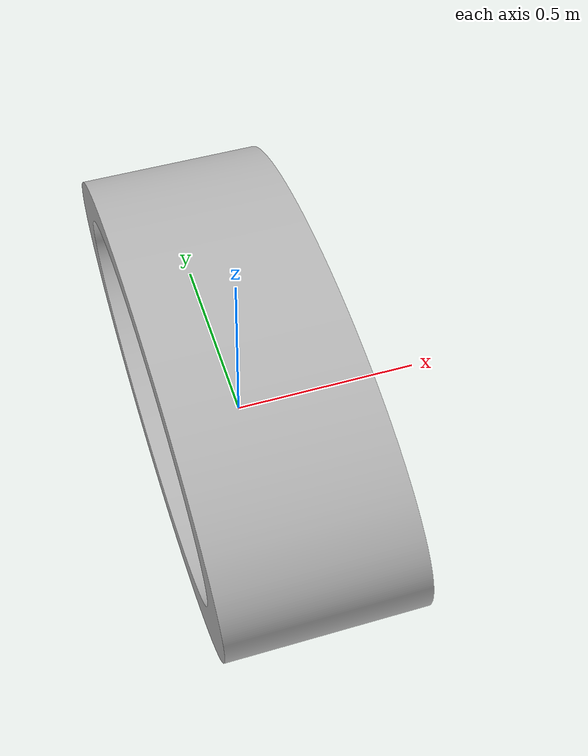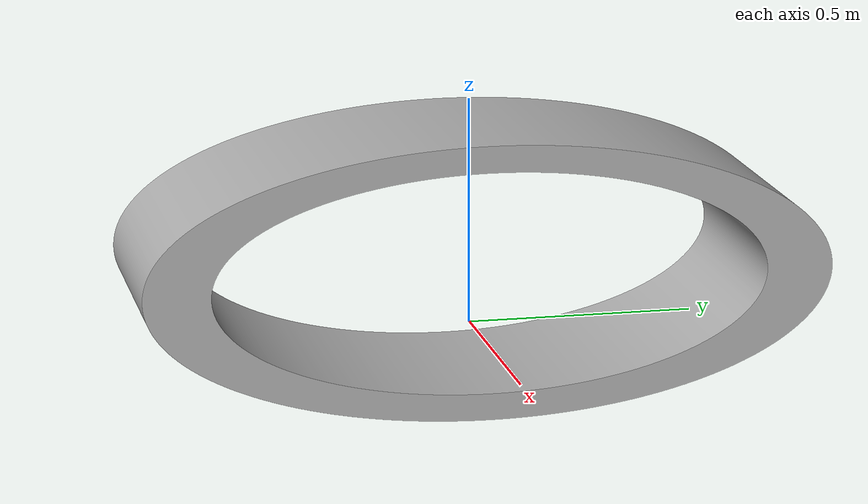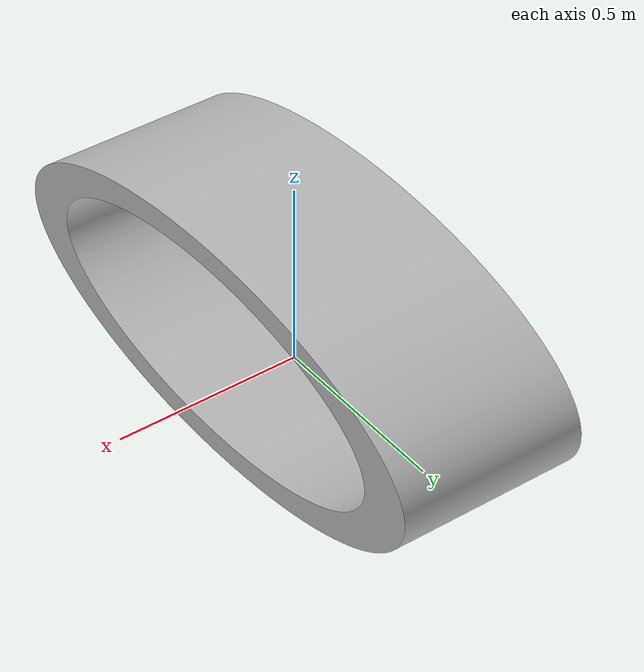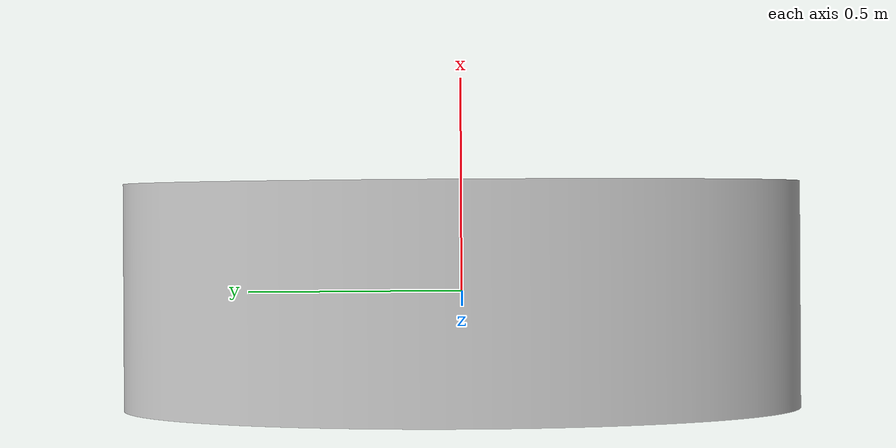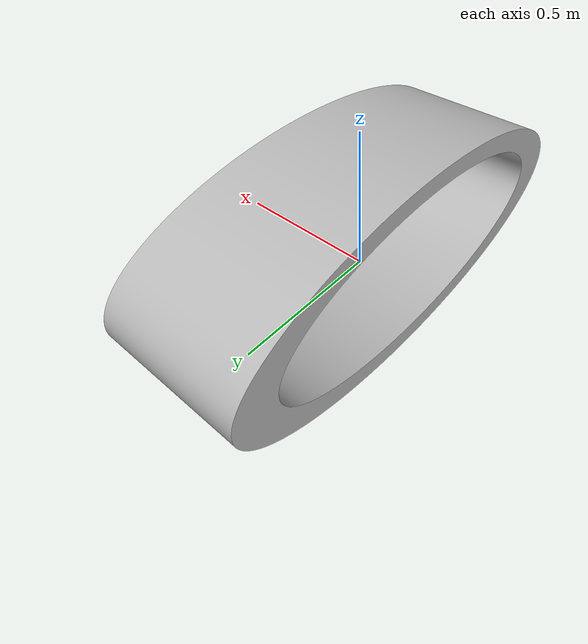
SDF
<?xml version="1.0"?>
<sdf version="1.6">

    <model name="tunnel7">
      <pose>0 0 0  0 0 0</pose>
      <static>true</static>
      <link name="body">

        <visual name="visual">
          <geometry>
            <mesh>
            	<scale>0.01 0.3 0.1</scale>
            	<uri>model://tunnel7/meshes/tunnel_brick7.dae</uri>
            </mesh>

          </geometry>
        </visual>

    </link>
  </model>

</sdf>
